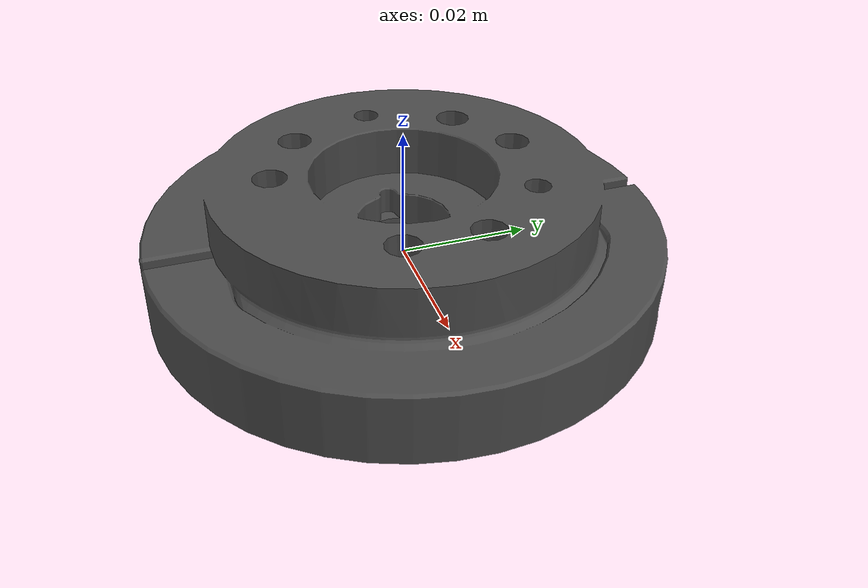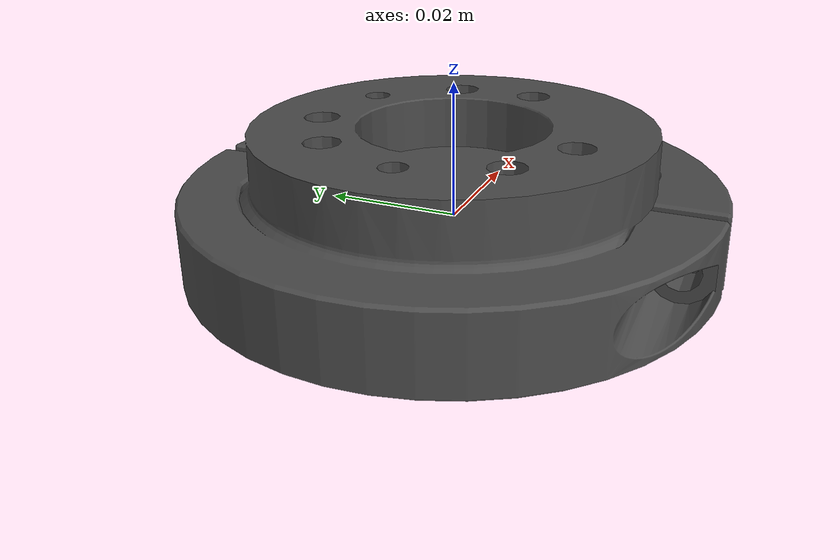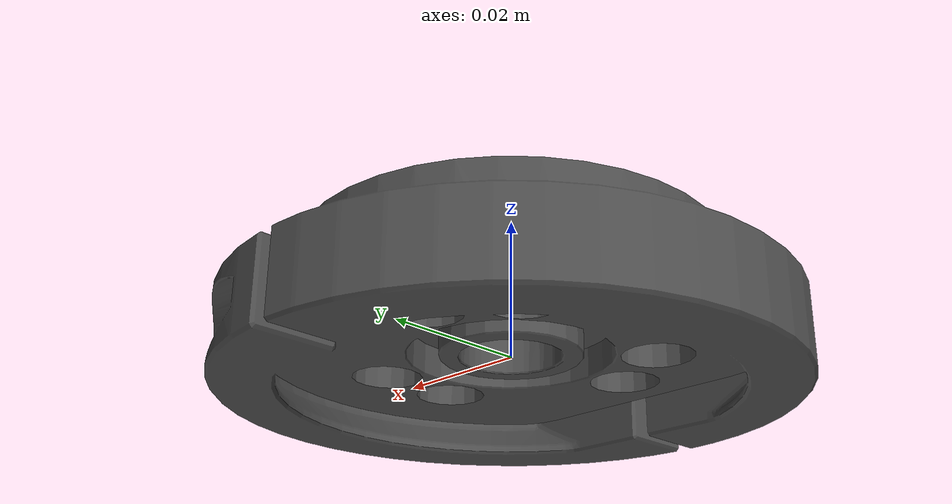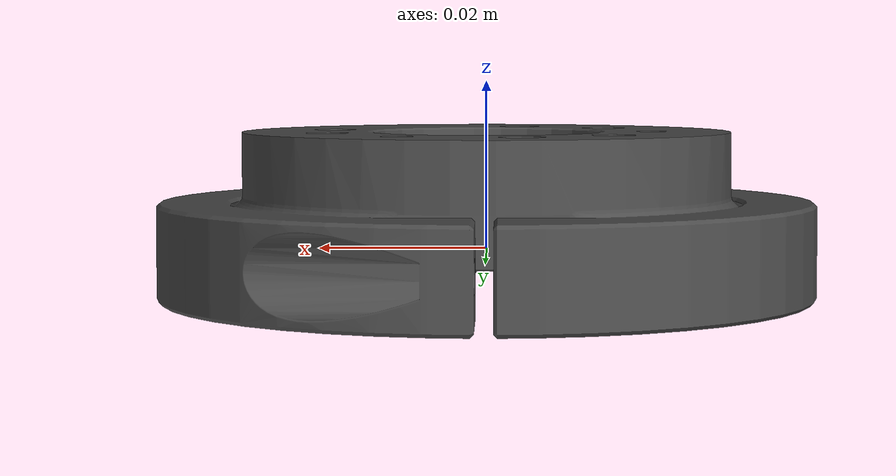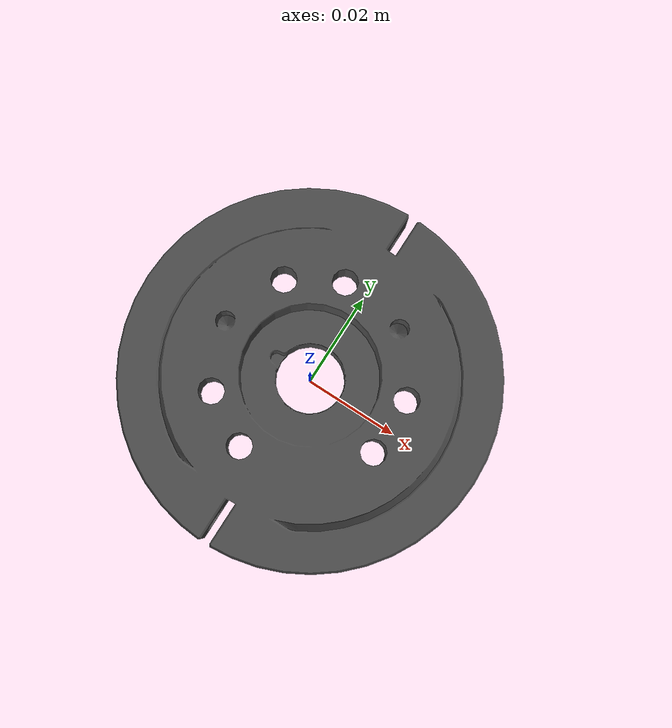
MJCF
<mujoco model="foot">
  <default>
    <default class="visual">
      <geom group="2" type="mesh" contype="0" conaffinity="0"/>
    </default>
    <default class="collision">
      <geom group="3" type="mesh"/>
    </default>
  </default>
  <asset>
    <material name="mtl_foot" specular="0.20000000000000004" shininess="1.0" rgba="0.29803922 0.29803922 0.29803922 1.0"/>
    <mesh file="foot.obj"/>
  </asset>
  <worldbody>
    <body name="foot">
      <geom material="mtl_foot" mesh="foot" class="visual"/>
      <geom mesh="foot" class="collision"/>
    </body>
  </worldbody>
</mujoco>
